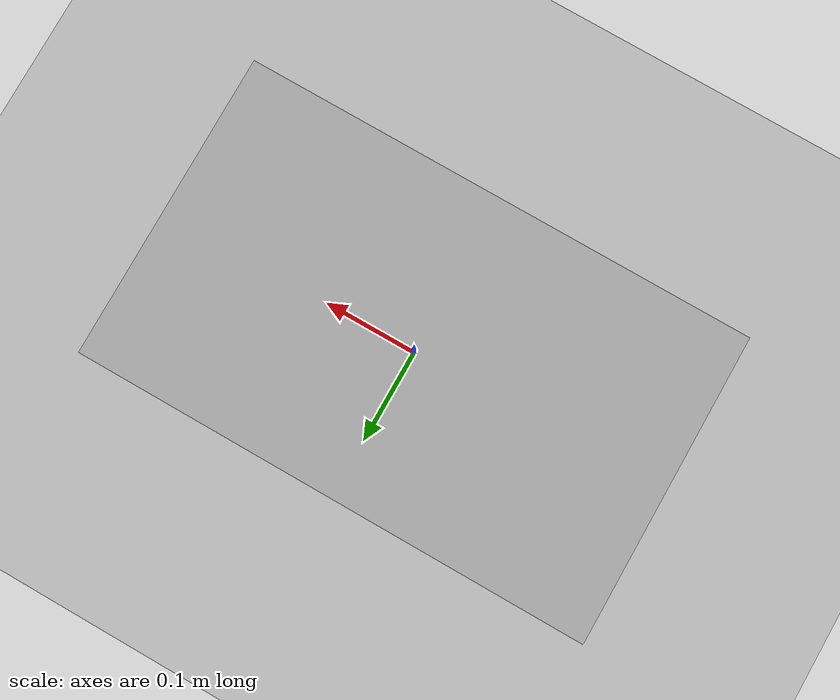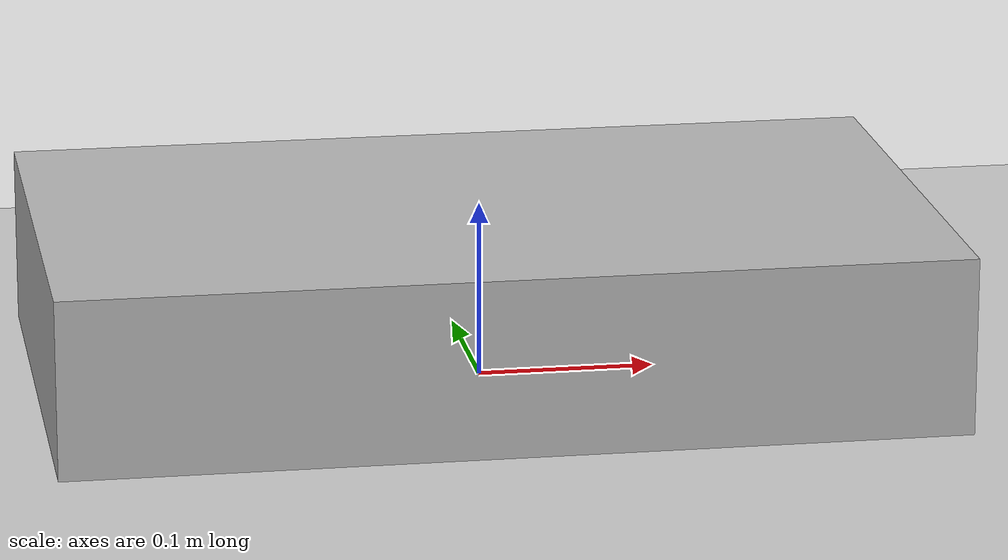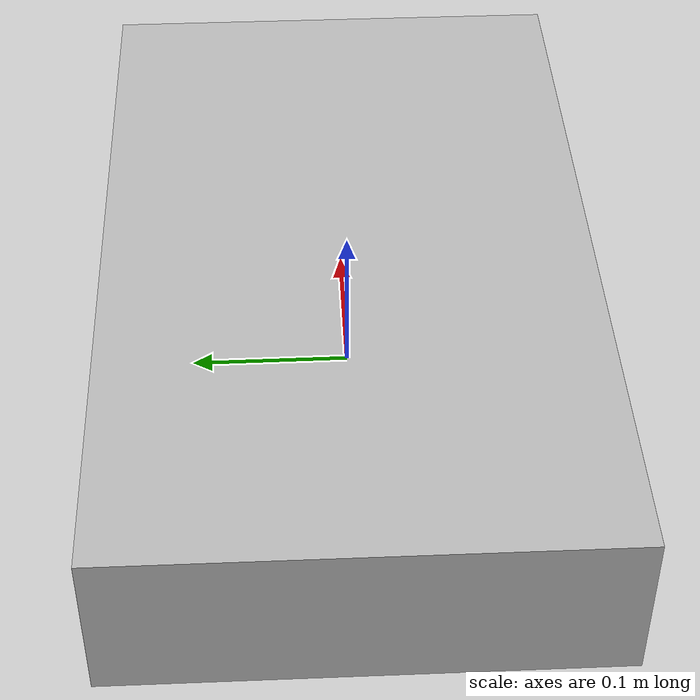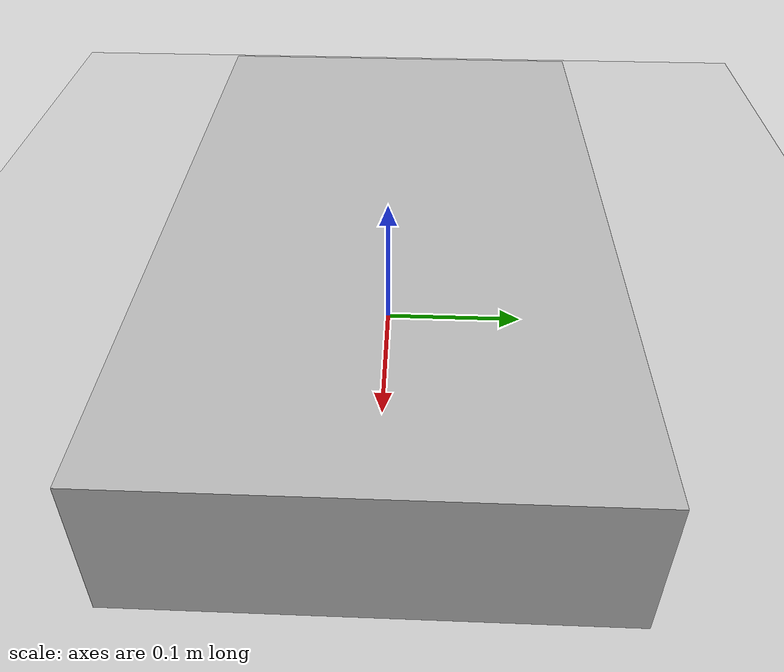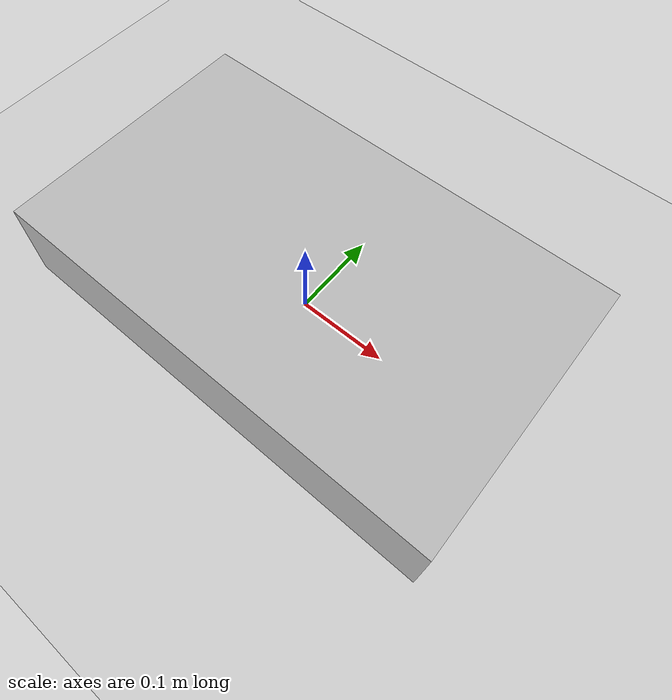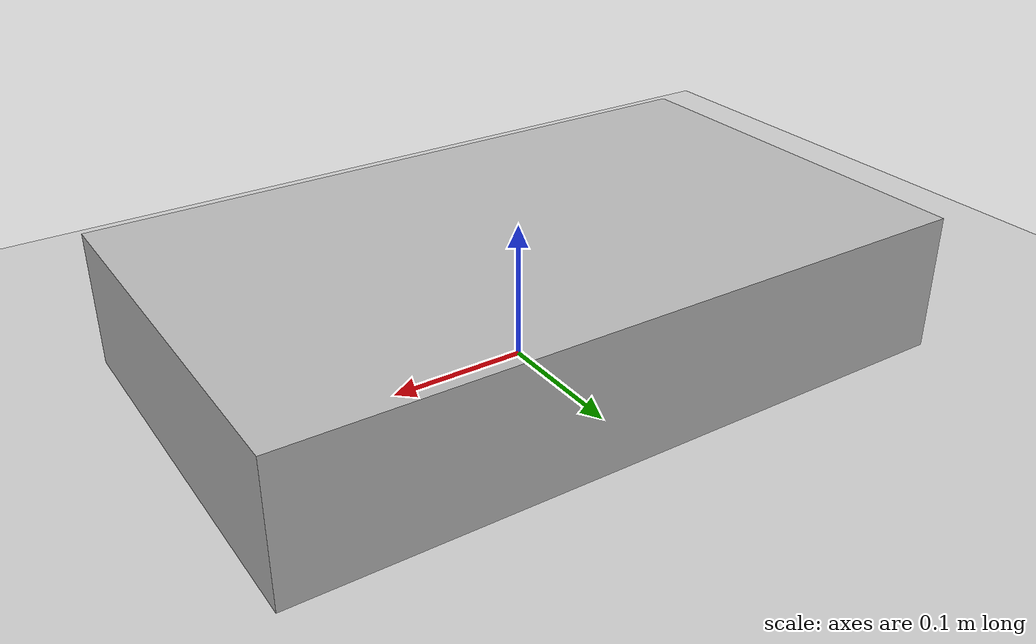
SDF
<?xml version="1.0" ?>
<sdf version="1.9">
  <world name="default">

    <physics type="ode">
      <max_step_size>0.001</max_step_size>
      <real_time_factor>1</real_time_factor>
      <real_time_update_rate>1000</real_time_update_rate>
    </physics>

    <plugin filename="gz-sim-physics-system"
            name="gz::sim::systems::Physics"/>

    <plugin filename="gz-sim-user-commands-system"
            name="gz::sim::systems::UserCommands"/>

    <plugin filename="gz-sim-scene-broadcaster-system"
            name="gz::sim::systems::SceneBroadcaster"/>

    <model name="ground_plane">
      <static>true</static>
      <link name="link">
        <collision name="collision">
          <geometry>
            <plane>
              <normal>0 0 1</normal>
              <size>100 100</size>
            </plane>
          </geometry>
        </collision>
        <visual name="visual">
          <geometry>
            <plane>
              <normal>0 0 1</normal>
              <size>100 100</size>
            </plane>
          </geometry>
        </visual>
      </link>
    </model>

    <include>
      <uri>file:///root/ros2_ws/install/rover_control/share/rover_control/models/rover/model.sdf</uri>
      <name>rover</name>
      <pose>0 0 0.05 0 0 0</pose>
    </include>

  </world>
</sdf>

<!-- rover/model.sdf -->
<sdf version="1.9">

  <model name="rover">

    <static>false</static>

    <pose>0 0 0 0 0 0</pose>

    <!-- BASE LINK -->

    <link name="base_link">

      <inertial>
        <mass>5.0</mass>

        <inertia>
          <ixx>0.10</ixx>
          <iyy>0.20</iyy>
          <izz>0.20</izz>
          <ixy>0</ixy>
          <ixz>0</ixz>
          <iyz>0</iyz>
        </inertia>

      </inertial>

      <collision name="base_collision">
        <geometry>
          <box>
            <size>0.5 0.3 0.1</size>
          </box>
        </geometry>
      </collision>

      <visual name="base_visual">
        <geometry>
          <box>
            <size>0.5 0.3 0.1</size>
          </box>
        </geometry>
      </visual>

    </link>

    <!-- LEFT WHEEL -->

    <link name="left_wheel">

      <pose>0 0 0 1.5708 0 0</pose>

      <inertial>

        <mass>0.5</mass>

        <inertia>
          <ixx>0.001</ixx>
          <iyy>0.001</iyy>
          <izz>0.001</izz>
          <ixy>0</ixy>
          <ixz>0</ixz>
          <iyz>0</iyz>
        </inertia>

      </inertial>

      <collision name="left_collision">
        <geometry>
          <cylinder>
            <radius>0.05</radius>
            <length>0.02</length>
          </cylinder>
        </geometry>
      </collision>

      <visual name="left_visual">
        <geometry>
          <cylinder>
            <radius>0.05</radius>
            <length>0.02</length>
          </cylinder>
        </geometry>
      </visual>

    </link>

    <!-- RIGHT WHEEL -->

    <link name="right_wheel">

      <pose>0 0 0 1.5708 0 0</pose>

      <inertial>

        <mass>0.5</mass>

        <inertia>
          <ixx>0.001</ixx>
          <iyy>0.001</iyy>
          <izz>0.001</izz>
          <ixy>0</ixy>
          <ixz>0</ixz>
          <iyz>0</iyz>
        </inertia>

      </inertial>

      <collision name="right_collision">
        <geometry>
          <cylinder>
            <radius>0.05</radius>
            <length>0.02</length>
          </cylinder>
        </geometry>
      </collision>

      <visual name="right_visual">
        <geometry>
          <cylinder>
            <radius>0.05</radius>
            <length>0.02</length>
          </cylinder>
        </geometry>
      </visual>

    </link>

    <!-- LEFT WHEEL JOINT -->

    <joint name="left_wheel_joint" type="revolute">

      <parent>base_link</parent>
      <child>left_wheel</child>

      <pose>0 0.15 0 0 0 0</pose>

      <axis>

        <xyz>0 1 0</xyz>

        <limit>
          <lower>-1000000</lower>
          <upper>1000000</upper>
          <effort>1000000</effort>
          <velocity>1000</velocity>
        </limit>

      </axis>

    </joint>

    <!-- RIGHT WHEEL JOINT -->

    <joint name="right_wheel_joint" type="revolute">

      <parent>base_link</parent>
      <child>right_wheel</child>

      <pose>0 -0.15 0 0 0 0</pose>

      <axis>

        <xyz>0 1 0</xyz>

        <limit>
          <lower>-1000000</lower>
          <upper>1000000</upper>
          <effort>1000000</effort>
          <velocity>1000</velocity>
        </limit>

      </axis>

    </joint>
    <plugin
      filename="libignition-gazebo6-diff-drive-system.so"
      name="ignition::gazebo::systems::DiffDrive">
      <left_joint>left_wheel_joint</left_joint>
      <right_joint>right_wheel_joint</right_joint>
      <wheel_separation>0.30</wheel_separation>
      <wheel_radius>0.05</wheel_radius>
    </plugin>

  </model>

</sdf>
